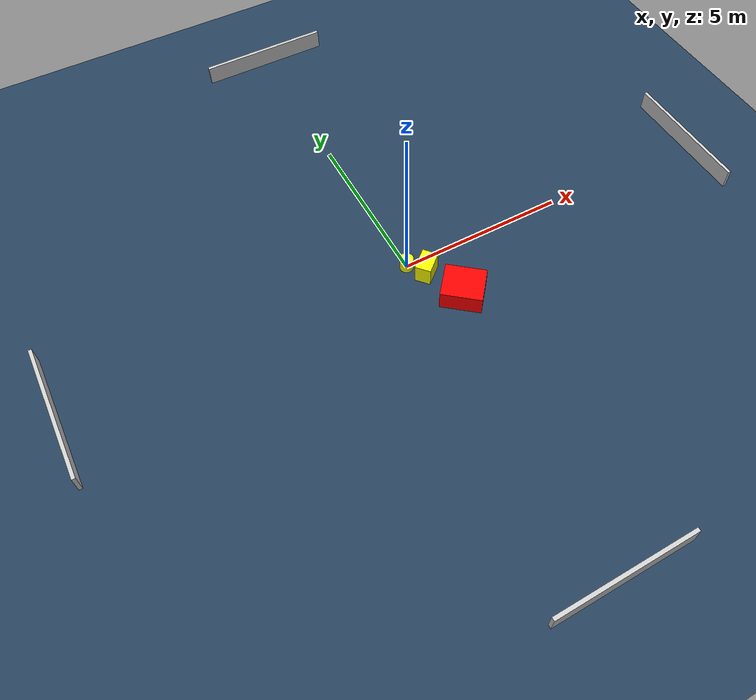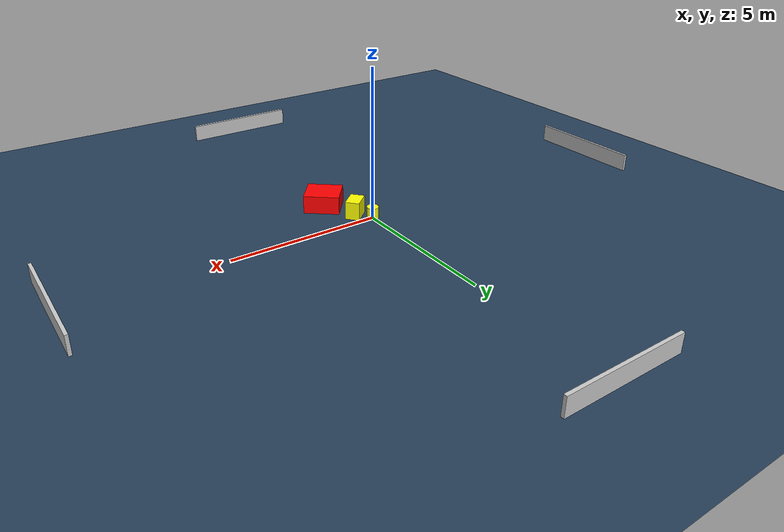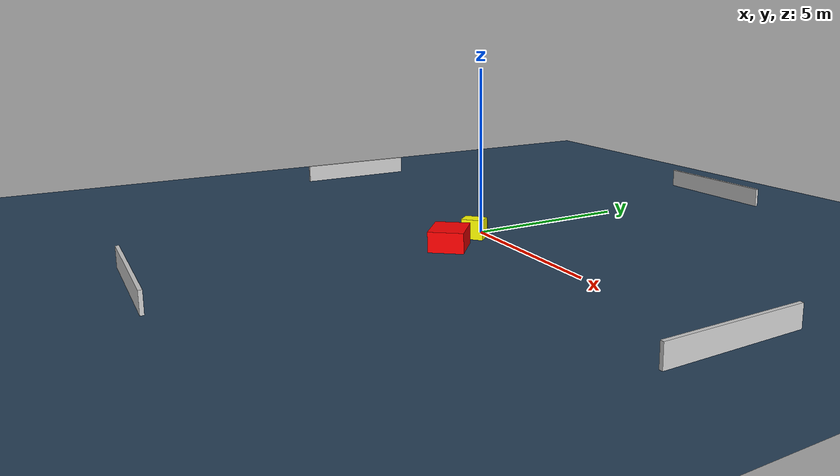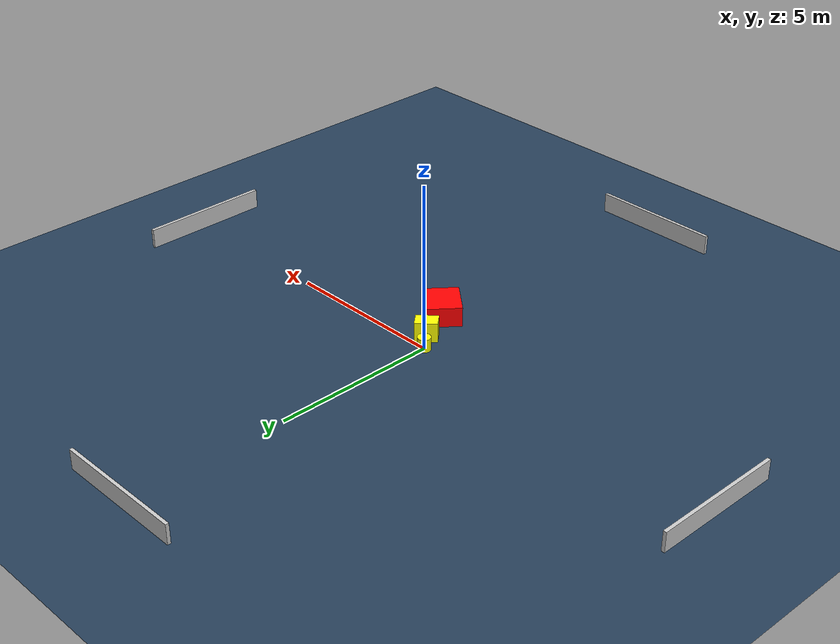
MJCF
<?xml version="1.0" ?>
<mujoco model="generated_environment">
  <option timestep="0.01" integrator="RK4" cone="elliptic"/>
  <default>
    <geom density="1"/>
  </default>
  <asset>
    <texture builtin="gradient" height="3072" name="skybox" rgb1="0.3 0.5 0.7" rgb2="0 0 0" type="skybox" width="512"/>
    <texture builtin="checker" height="300" name="groundplane" rgb1="0.2 0.3 0.4" rgb2="0.1 0.2 0.3" type="2d" width="300"/>
    <material name="groundplane" reflectance="0.2" texrepeat="5 5" texture="groundplane"/>
  </asset>
  <worldbody>
    <light dir="0 0 -1" directional="true" pos="0 0 1.5"/>
    <geom condim="3" friction="0.5 0.005 0.001" material="groundplane" name="floor" pos="0 0 0" size="0 0 0.05" type="plane"/>
    <body name="walls">
      <geom name="wall_1" condim="4" pos="-10.0 0.0 0.3" rgba="0.800000011920929 0.800000011920929 0.800000011920929 1.0" size="0.05 2.0 0.3" type="box"/>
      <geom name="wall_2" condim="4" pos="10.0 0.0 0.3" rgba="0.800000011920929 0.800000011920929 0.800000011920929 1.0" size="0.05 2.0 0.3" type="box"/>
      <geom name="wall_3" condim="4" pos="0.0 -10.0 0.3" rgba="0.800000011920929 0.800000011920929 0.800000011920929 1.0" size="2.0 0.05 0.3" type="box"/>
      <geom name="wall_4" condim="4" pos="0.0 10.0 0.3" rgba="0.800000011920929 0.800000011920929 0.800000011920929 1.0" size="2.0 0.05 0.3" type="box"/>
    </body>
    <body name="robot">
      <joint name="joint_x" type="slide" pos="0 0 0" axis="1 0 0"/>
      <joint name="joint_y" type="slide" pos="0 0 0" axis="0 1 0"/>
      <geom name="robot" type="cylinder" pos="0.0 0.0 0.2" size="0.2 0.2 0.0" mass="5.0" friction="1.0 0.005 0.0001" condim="4" rgba="1.0 1.0 0.0 1.0"/>
    </body>
    <body name="obstacle_1_movable">
      <geom name="obstacle_1_movable" condim="4" pos="0.3822170751257621 -0.46124641260446875 0.3" euler="0 0 311.0436478432124" friction="0.0 0.005 0.001" rgba="1.0 1.0 0.0 1.0" size="0.23006231541437985 0.3307318475235371 0.3" type="box" mass="0.1"/>
      <joint type="free"/>
    </body>
    <body name="obstacle_2_static">
      <geom name="obstacle_2_static" condim="4" pos="0.9035276022883126 -1.5909308884266458 0.3" euler="0 0 140.62278104091337" friction="0.0 0.005 0.001" rgba="1.0 0.0 0.0 1.0" size="0.5874028339688365 0.517295646860315 0.3" type="box"/>
    </body>
  </worldbody>
  <actuator>
    <motor name="actuator_x" joint="joint_x" gear="1" ctrlrange="-1 1"/>
    <motor name="actuator_y" joint="joint_y" gear="1" ctrlrange="-1 1"/>
  </actuator>
</mujoco>
